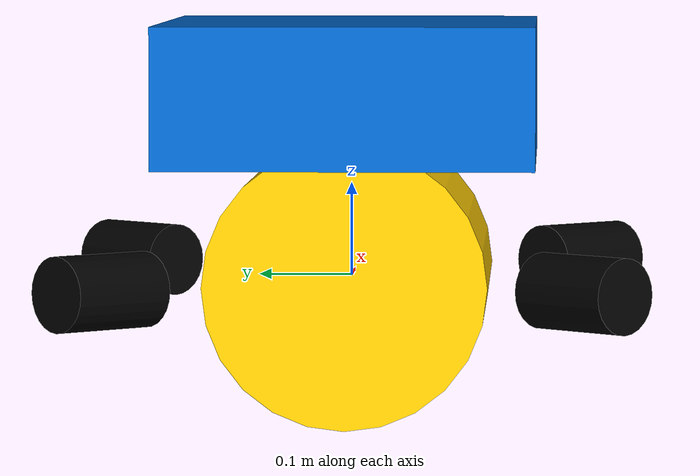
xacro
<?xml version="1.0"?>
<robot name="auv" xmlns:xacro="http://www.ros.org/wiki/xacro">

  <xacro:property name="mass" value="175.0" />

  <link name="base_link">
    <inertial>
      <mass value="${mass}"/>
      <inertia ixx="10.0" ixy="0.0" ixz="0.0" iyy="10.0" iyz="0.0" izz="10.0"/>
    </inertial>

    <visual>
      <origin xyz="0 0 0" rpy="0 1.5708 0"/>
      <geometry><cylinder radius="0.15" length="0.4"/></geometry>
      <material name="yellow"><color rgba="1 0.8 0 1"/></material>
    </visual>
    <collision>
      <origin xyz="0 0 0" rpy="0 1.5708 0"/>
      <geometry><cylinder radius="0.15" length="0.4"/></geometry>
    </collision>

    <visual>
      <origin xyz="0 0 0.2" rpy="0 0 0"/>
      <geometry><box size="0.5 0.4 0.15"/></geometry>
      <material name="blue_foam"><color rgba="0 0.4 0.8 1"/></material>
    </visual>
  </link>

  <gazebo>
    <plugin
      filename="libignition-gazebo-odometry-publisher-system.so"
      name="ignition::gazebo::systems::OdometryPublisher">
      <odom_frame>world</odom_frame>
      <robot_base_frame>base_link</robot_base_frame>
      <odom_publish_frequency>10</odom_publish_frequency>
      <odom_topic>/dvl/odom</odom_topic>
    </plugin>
    <plugin
      filename="libignition-gazebo-imu-system.so"
      name="ignition::gazebo::systems::Imu">
    </plugin>
  </gazebo>

  <!-- IMU Link for the plugin -->
  <link name="imu_link">
    <inertial>
      <mass value="0.01"/>
      <inertia ixx="0.0001" ixy="0" ixz="0" iyy="0.0001" iyz="0" izz="0.0001"/>
    </inertial>
  </link>
  <joint name="imu_joint" type="fixed">
    <parent link="base_link"/>
    <child link="imu_link"/>
  </joint>
  <gazebo reference="imu_link">
    <sensor name="imu_sensor" type="imu">
      <always_on>1</always_on>
      <update_rate>50</update_rate>
      <visualize>true</visualize>
      <topic>/imu/data</topic>
    </sensor>
  </gazebo>

  <xacro:macro name="thruster_link" params="name x y z roll pitch yaw material">
    <link name="thruster_${name}">
      <inertial>
        <mass value="0.5"/>
        <inertia ixx="0.001" ixy="0" ixz="0" iyy="0.001" iyz="0" izz="0.001"/>
      </inertial>
      <visual>
        <geometry><cylinder radius="0.04" length="0.12"/></geometry>
        <material name="${material}"><color rgba="0 0 0 1"/></material>
      </visual>
      <collision>
        <geometry><cylinder radius="0.04" length="0.12"/></geometry>
      </collision>
    </link>

    <joint name="thruster_${name}_joint" type="continuous">
      <parent link="base_link"/>
      <child link="thruster_${name}"/>
      <origin xyz="${x} ${y} ${z}" rpy="${roll} ${pitch} ${yaw}"/>
      <axis xyz="0 0 1"/>
    </joint>

    <gazebo reference="thruster_${name}_joint">
      <plugin
        filename="libignition-gazebo-thruster-system.so"
        name="ignition::gazebo::systems::Thruster">
        <joint_name>thruster_${name}_joint</joint_name>
        <thrust_coefficient>0.02</thrust_coefficient>
        <fluid_density>1000</fluid_density>
        <propeller_diameter>0.1</propeller_diameter>
        <velocity_control>true</velocity_control>
        <topic>/thrusters/${name}/cmd_thrust</topic>
      </plugin>
    </gazebo>
  </xacro:macro>

  <xacro:thruster_link name="h1" x="0.25" y="0.25" z="0" roll="0" pitch="1.5708" yaw="0.785" material="black"/>
  <xacro:thruster_link name="h2" x="0.25" y="-0.25" z="0" roll="0" pitch="1.5708" yaw="-0.785" material="black"/>
  <xacro:thruster_link name="h3" x="-0.25" y="0.25" z="0" roll="0" pitch="1.5708" yaw="2.355" material="black"/>
  <xacro:thruster_link name="h4" x="-0.25" y="-0.25" z="0" roll="0" pitch="1.5708" yaw="-2.355" material="black"/>

  <xacro:thruster_link name="v1" x="0.15" y="0.15" z="0.2" roll="0" pitch="0" yaw="0" material="black"/>
  <xacro:thruster_link name="v2" x="0.15" y="-0.15" z="0.2" roll="0" pitch="0" yaw="0" material="black"/>
  <xacro:thruster_link name="v3" x="-0.15" y="0.15" z="0.2" roll="0" pitch="0" yaw="0" material="black"/>
  <xacro:thruster_link name="v4" x="-0.15" y="-0.15" z="0.2" roll="0" pitch="0" yaw="0" material="black"/>

</robot>
